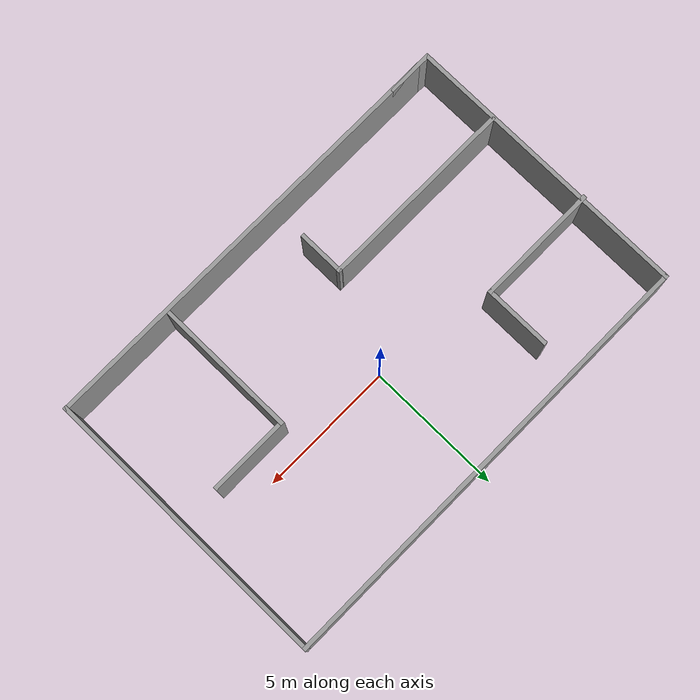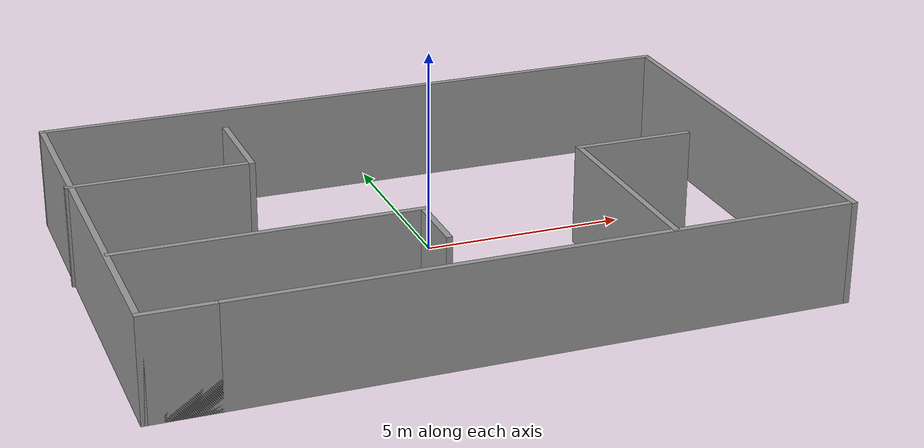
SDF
<?xml version='1.0'?>
<sdf version='1.7'>
  <model name='room'>
    <pose>-0.259397 -0.737243 0 0 -0 0</pose>
    <link name='Wall_10'>
      <collision name='Wall_10_Collision'>
        <geometry>
          <box>
            <size>2.5 0.15 2.5</size>
          </box>
        </geometry>
        <pose>0 0 1.25 0 -0 0</pose>
      </collision>
      <visual name='Wall_10_Visual'>
        <pose>0 0 1.25 0 -0 0</pose>
        <geometry>
          <box>
            <size>2.5 0.15 2.5</size>
          </box>
        </geometry>
        <material>
          <script>
            <uri>file://media/materials/scripts/gazebo.material</uri>
            <name>Gazebo/Grey</name>
          </script>
          <ambient>1 1 1 1</ambient>
        </material>
        <meta>
          <layer>0</layer>
        </meta>
      </visual>
      <pose>-3.85938 2.82056 0 0 -0 1.5708</pose>
    </link>
    <link name='Wall_12'>
      <collision name='Wall_12_Collision'>
        <geometry>
          <box>
            <size>7.25 0.15 2.5</size>
          </box>
        </geometry>
        <pose>0 0 1.25 0 -0 0</pose>
      </collision>
      <visual name='Wall_12_Visual'>
        <pose>0 0 1.25 0 -0 0</pose>
        <geometry>
          <box>
            <size>7.25 0.15 2.5</size>
          </box>
        </geometry>
        <material>
          <script>
            <uri>file://media/materials/scripts/gazebo.material</uri>
            <name>Gazebo/Grey</name>
          </script>
          <ambient>1 1 1 1</ambient>
        </material>
        <meta>
          <layer>0</layer>
        </meta>
      </visual>
      <pose>-4.53632 -2.29222 0 0 -0 0</pose>
    </link>
    <link name='Wall_13'>
      <collision name='Wall_13_Collision'>
        <geometry>
          <box>
            <size>1.75 0.15 2.5</size>
          </box>
        </geometry>
        <pose>0 0 1.25 0 -0 0</pose>
      </collision>
      <visual name='Wall_13_Visual'>
        <pose>0 0 1.25 0 -0 0</pose>
        <geometry>
          <box>
            <size>1.75 0.15 2.5</size>
          </box>
        </geometry>
        <material>
          <script>
            <uri>file://media/materials/scripts/gazebo.material</uri>
            <name>Gazebo/Grey</name>
          </script>
          <ambient>1 1 1 1</ambient>
        </material>
        <meta>
          <layer>0</layer>
        </meta>
      </visual>
      <pose>-0.986324 -3.09222 0 0 -0 -1.5708</pose>
    </link>
    <link name='Wall_17'>
      <collision name='Wall_17_Collision'>
        <geometry>
          <box>
            <size>5.25 0.15 2.5</size>
          </box>
        </geometry>
        <pose>0 0 1.25 0 -0 0</pose>
      </collision>
      <visual name='Wall_17_Visual'>
        <pose>0 0 1.25 0 -0 0</pose>
        <geometry>
          <box>
            <size>5.25 0.15 2.5</size>
          </box>
        </geometry>
        <material>
          <script>
            <uri>file://media/materials/scripts/gazebo.material</uri>
            <name>Gazebo/Grey</name>
          </script>
          <ambient>1 1 1 1</ambient>
        </material>
        <meta>
          <layer>0</layer>
        </meta>
      </visual>
      <pose>3.78856 -2.69556 0 0 -0 1.5708</pose>
    </link>
    <link name='Wall_18'>
      <collision name='Wall_18_Collision'>
        <geometry>
          <box>
            <size>3 0.15 2.5</size>
          </box>
        </geometry>
        <pose>0 0 1.25 0 -0 0</pose>
      </collision>
      <visual name='Wall_18_Visual'>
        <pose>0 0 1.25 0 -0 0</pose>
        <geometry>
          <box>
            <size>3 0.15 2.5</size>
          </box>
        </geometry>
        <material>
          <script>
            <uri>file://media/materials/scripts/gazebo.material</uri>
            <name>Gazebo/Grey</name>
          </script>
          <ambient>1 1 1 1</ambient>
        </material>
        <meta>
          <layer>0</layer>
        </meta>
      </visual>
      <pose>5.21356 -0.145559 0 0 -0 0</pose>
    </link>
    <link name='Wall_3'>
      <collision name='Wall_3_Collision'>
        <geometry>
          <box>
            <size>16 0.15 2.5</size>
          </box>
        </geometry>
        <pose>0 0 1.25 0 -0 0</pose>
      </collision>
      <visual name='Wall_3_Visual'>
        <pose>0 0 1.25 0 -0 0</pose>
        <geometry>
          <box>
            <size>16 0.15 2.5</size>
          </box>
        </geometry>
        <material>
          <script>
            <uri>file://media/materials/scripts/gazebo.material</uri>
            <name>Gazebo/Grey</name>
          </script>
          <ambient>1 1 1 1</ambient>
        </material>
        <meta>
          <layer>0</layer>
        </meta>
      </visual>
      <pose>0.28438 -5.3 0 0 -0 0</pose>
    </link>
    <link name='Wall_4'>
      <collision name='Wall_4_Collision'>
        <geometry>
          <box>
            <size>10.75 0.15 2.5</size>
          </box>
        </geometry>
        <pose>0 0 1.25 0 -0 0</pose>
      </collision>
      <visual name='Wall_4_Visual'>
        <pose>0 0 1.25 0 -0 0</pose>
        <geometry>
          <box>
            <size>10.75 0.15 2.5</size>
          </box>
        </geometry>
        <material>
          <script>
            <uri>file://media/materials/scripts/gazebo.material</uri>
            <name>Gazebo/Grey</name>
          </script>
          <ambient>1 1 1 1</ambient>
        </material>
        <meta>
          <layer>0</layer>
        </meta>
      </visual>
      <pose>8.20938 -0 0 0 -0 1.5708</pose>
    </link>
    <link name='Wall_5'>
      <collision name='Wall_5_Collision'>
        <geometry>
          <box>
            <size>16.5 0.15 2.5</size>
          </box>
        </geometry>
        <pose>0 0 1.25 0 -0 0</pose>
      </collision>
      <visual name='Wall_5_Visual'>
        <pose>0 0 1.25 0 -0 0</pose>
        <geometry>
          <box>
            <size>16.5 0.15 2.5</size>
          </box>
        </geometry>
        <material>
          <script>
            <uri>file://media/materials/scripts/gazebo.material</uri>
            <name>Gazebo/Grey</name>
          </script>
          <ambient>1 1 1 1</ambient>
        </material>
        <meta>
          <layer>0</layer>
        </meta>
      </visual>
      <pose>0.03438 5.3 0 0 -0 3.14159</pose>
    </link>
    <link name='Wall_6'>
      <collision name='Wall_6_Collision'>
        <geometry>
          <box>
            <size>10.75 0.15 2.5</size>
          </box>
        </geometry>
        <pose>0 0 1.25 0 -0 0</pose>
      </collision>
      <visual name='Wall_6_Visual'>
        <pose>0 0 1.25 0 -0 0</pose>
        <geometry>
          <box>
            <size>10.75 0.15 2.5</size>
          </box>
        </geometry>
        <material>
          <script>
            <uri>file://media/materials/scripts/gazebo.material</uri>
            <name>Gazebo/Grey</name>
          </script>
          <ambient>1 1 1 1</ambient>
        </material>
        <meta>
          <layer>0</layer>
        </meta>
      </visual>
      <pose>-8.14062 -0 0 0 -0 -1.5708</pose>
    </link>
    <link name='Wall_7'>
      <collision name='Wall_7_Collision'>
        <geometry>
          <box>
            <size>1.75 0.15 2.5</size>
          </box>
        </geometry>
        <pose>0 0 1.25 0 -0 0</pose>
      </collision>
      <visual name='Wall_7_Visual'>
        <pose>0 0 1.25 0 -0 0</pose>
        <geometry>
          <box>
            <size>1.75 0.15 2.5</size>
          </box>
        </geometry>
        <material>
          <script>
            <uri>file://media/materials/scripts/gazebo.material</uri>
            <name>Gazebo/Grey</name>
          </script>
          <ambient>1 1 1 1</ambient>
        </material>
        <meta>
          <layer>0</layer>
        </meta>
      </visual>
      <pose>-7.34062 -5.3 0 0 -0 0</pose>
    </link>
    <link name='Wall_9'>
      <collision name='Wall_9_Collision'>
        <geometry>
          <box>
            <size>4.5 0.15 2.5</size>
          </box>
        </geometry>
        <pose>0 0 1.25 0 -0 0</pose>
      </collision>
      <visual name='Wall_9_Visual'>
        <pose>0 0 1.25 0 -0 0</pose>
        <geometry>
          <box>
            <size>4.5 0.15 2.5</size>
          </box>
        </geometry>
        <material>
          <script>
            <uri>file://media/materials/scripts/gazebo.material</uri>
            <name>Gazebo/Grey</name>
          </script>
          <ambient>1 1 1 1</ambient>
        </material>
        <meta>
          <layer>0</layer>
        </meta>
      </visual>
      <pose>-6.03438 1.64556 0 0 -0 0</pose>
    </link>
    <static>1</static>
  </model>
</sdf>
